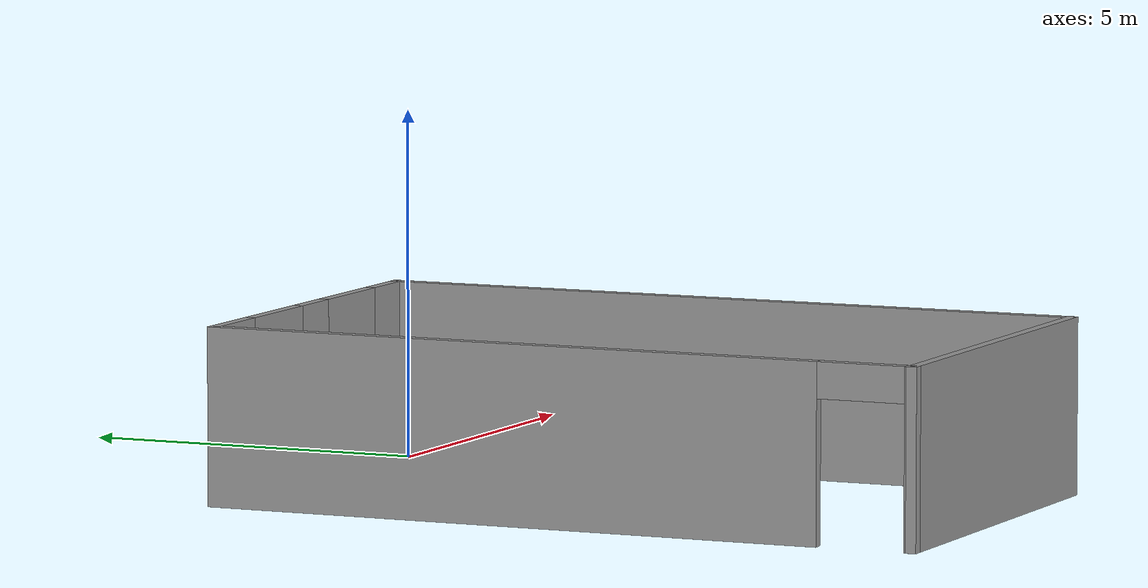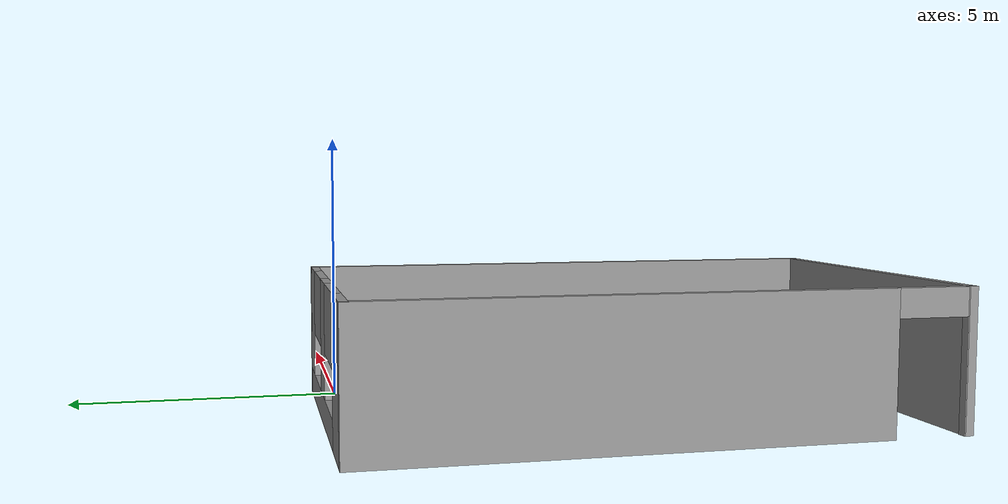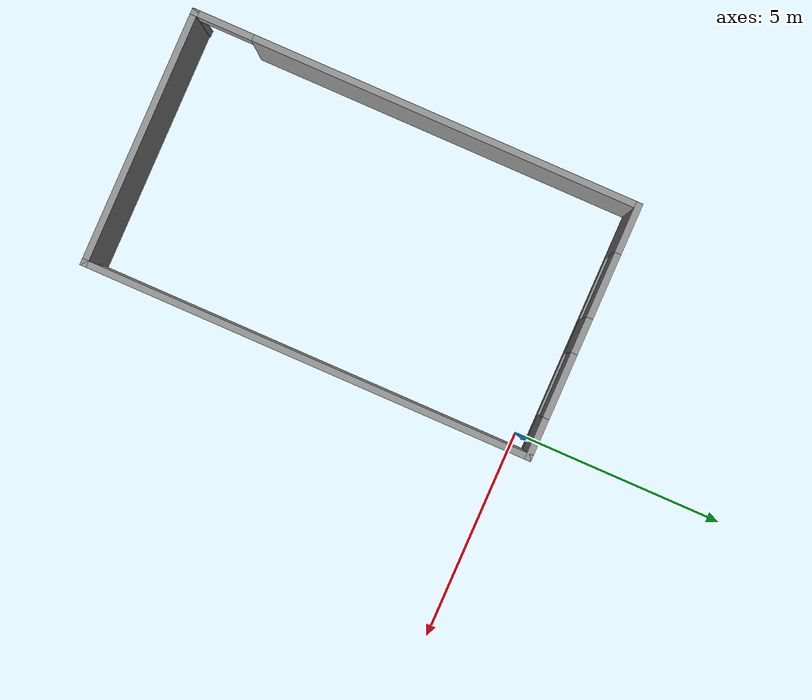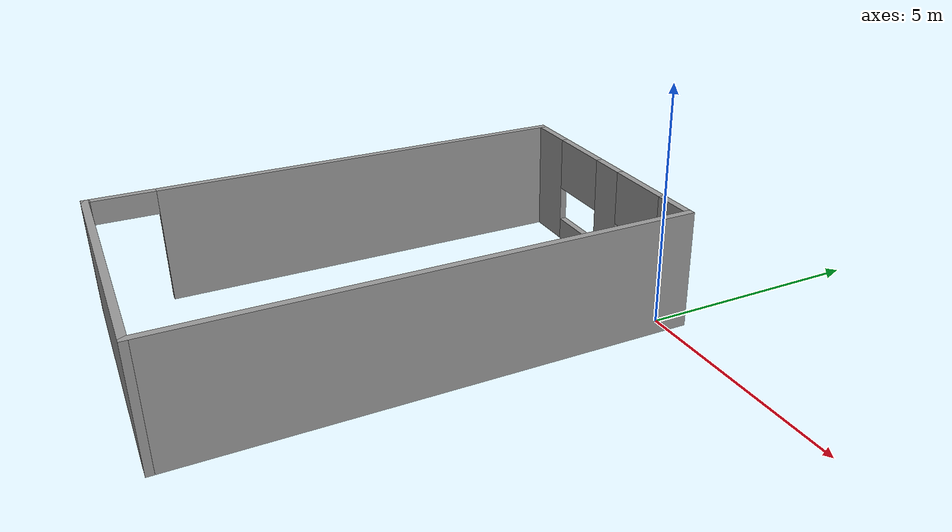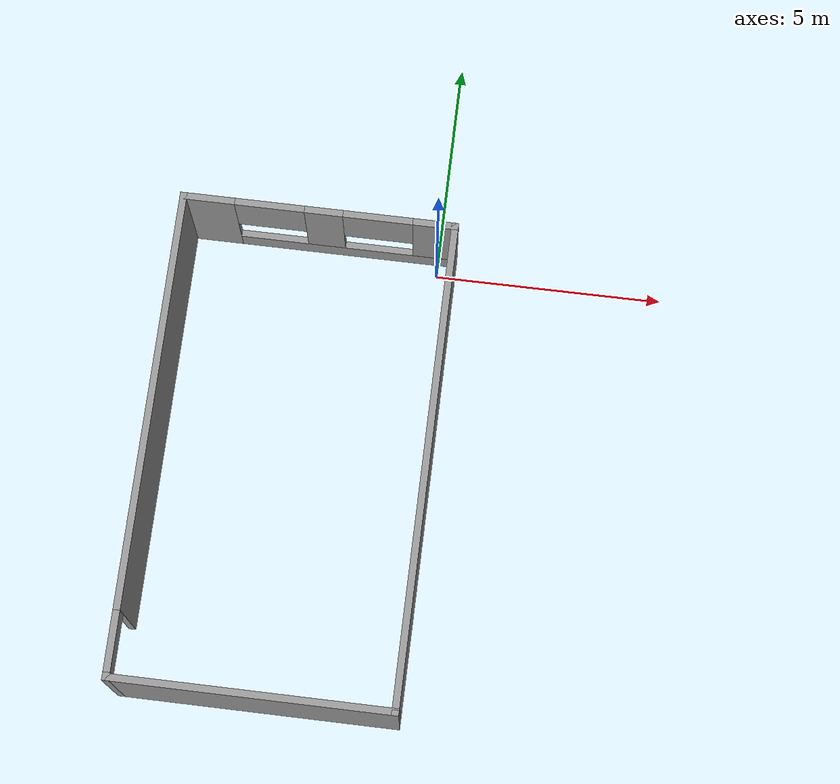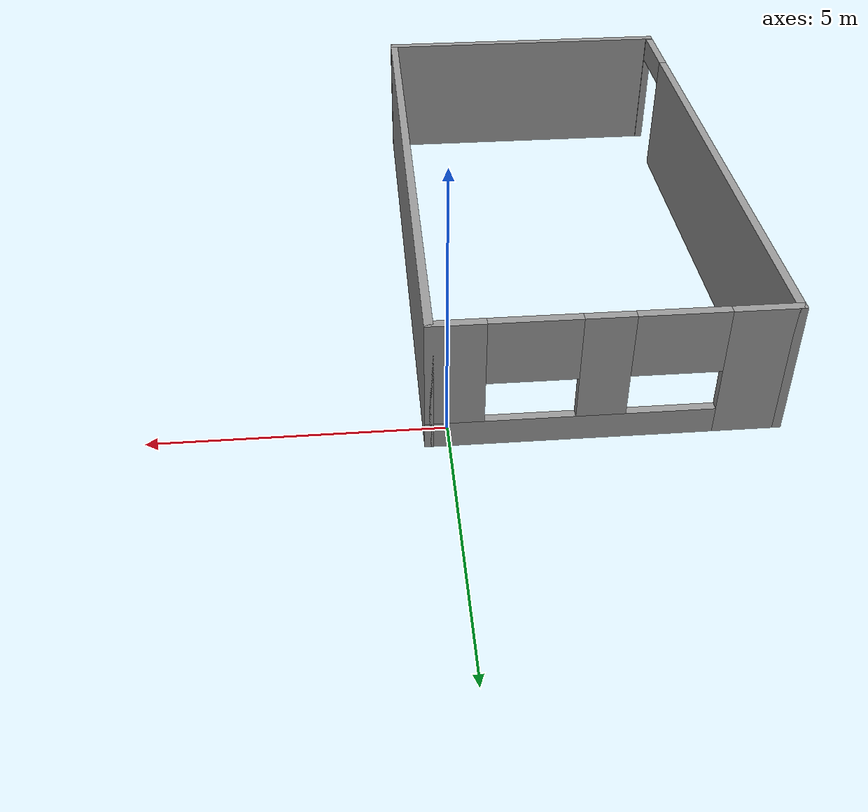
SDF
<?xml version='1.0'?>
<sdf version='1.7'>
  <model name='new_room'>
    <pose>-2.59495 -4.83209 0 0 -0 0</pose>
    <link name='Wall_5'>
      <pose>-2.925 0 0 0 -0 1.5708</pose>
      <visual name='Wall_5_Visual_0'>
        <pose>-5.16426 0 1.25 0 -0 0</pose>
        <geometry>
          <box>
            <size>0.171477 0.15 2.5</size>
          </box>
        </geometry>
        <material>
          <script>
            <uri>file://media/materials/scripts/gazebo.material</uri>
            <name>Gazebo/Grey</name>
          </script>
          <ambient>1 1 1 1</ambient>
        </material>
        <meta>
          <layer>0</layer>
        </meta>
      </visual>
      <collision name='Wall_5_Collision_0'>
        <geometry>
          <box>
            <size>0.171477 0.15 2.5</size>
          </box>
        </geometry>
        <pose>-5.16426 0 1.25 0 -0 0</pose>
      </collision>
      <visual name='Wall_5_Visual_1'>
        <pose>0.716761 0 1.25 0 -0 0</pose>
        <geometry>
          <box>
            <size>9.06648 0.15 2.5</size>
          </box>
        </geometry>
        <material>
          <script>
            <uri>file://media/materials/scripts/gazebo.material</uri>
            <name>Gazebo/Grey</name>
          </script>
          <ambient>1 1 1 1</ambient>
        </material>
        <meta>
          <layer>0</layer>
        </meta>
      </visual>
      <collision name='Wall_5_Collision_1'>
        <geometry>
          <box>
            <size>9.06648 0.15 2.5</size>
          </box>
        </geometry>
        <pose>0.716761 0 1.25 0 -0 0</pose>
      </collision>
      <visual name='Wall_5_Visual_2'>
        <pose>-4.4475 0 2.25 0 -0 0</pose>
        <geometry>
          <box>
            <size>1.26204 0.15 0.5</size>
          </box>
        </geometry>
        <material>
          <script>
            <uri>file://media/materials/scripts/gazebo.material</uri>
            <name>Gazebo/Grey</name>
          </script>
          <ambient>1 1 1 1</ambient>
        </material>
        <meta>
          <layer>0</layer>
        </meta>
      </visual>
      <collision name='Wall_5_Collision_2'>
        <geometry>
          <box>
            <size>1.26204 0.15 0.5</size>
          </box>
        </geometry>
        <pose>-4.4475 0 2.25 0 -0 0</pose>
      </collision>
    </link>
    <link name='Wall_6'>
      <pose>-0 5.175 0 0 -0 0</pose>
      <visual name='Wall_6_Visual_0'>
        <pose>-2.40831 0 1.25 0 -0 0</pose>
        <geometry>
          <box>
            <size>1.18338 0.15 2.5</size>
          </box>
        </geometry>
        <material>
          <script>
            <uri>file://media/materials/scripts/gazebo.material</uri>
            <name>Gazebo/Grey</name>
          </script>
          <ambient>1 1 1 1</ambient>
        </material>
        <meta>
          <layer>0</layer>
        </meta>
      </visual>
      <collision name='Wall_6_Collision_0'>
        <geometry>
          <box>
            <size>1.18338 0.15 2.5</size>
          </box>
        </geometry>
        <pose>-2.40831 0 1.25 0 -0 0</pose>
      </collision>
      <visual name='Wall_6_Visual_1'>
        <pose>0.591691 0 0.25 0 -0 0</pose>
        <geometry>
          <box>
            <size>4.81662 0.15 0.5</size>
          </box>
        </geometry>
        <material>
          <script>
            <uri>file://media/materials/scripts/gazebo.material</uri>
            <name>Gazebo/Grey</name>
          </script>
          <ambient>1 1 1 1</ambient>
        </material>
        <meta>
          <layer>0</layer>
        </meta>
      </visual>
      <collision name='Wall_6_Collision_1'>
        <geometry>
          <box>
            <size>4.81662 0.15 0.5</size>
          </box>
        </geometry>
        <pose>0.591691 0 0.25 0 -0 0</pose>
      </collision>
      <visual name='Wall_6_Visual_2'>
        <pose>0.101957 0 1.5 0 -0 0</pose>
        <geometry>
          <box>
            <size>0.829199 0.15 2</size>
          </box>
        </geometry>
        <material>
          <script>
            <uri>file://media/materials/scripts/gazebo.material</uri>
            <name>Gazebo/Grey</name>
          </script>
          <ambient>1 1 1 1</ambient>
        </material>
        <meta>
          <layer>0</layer>
        </meta>
      </visual>
      <collision name='Wall_6_Collision_2'>
        <geometry>
          <box>
            <size>0.829199 0.15 2</size>
          </box>
        </geometry>
        <pose>0.101957 0 1.5 0 -0 0</pose>
      </collision>
      <visual name='Wall_6_Visual_3'>
        <pose>2.51027 0 1.5 0 -0 0</pose>
        <geometry>
          <box>
            <size>0.979468 0.15 2</size>
          </box>
        </geometry>
        <material>
          <script>
            <uri>file://media/materials/scripts/gazebo.material</uri>
            <name>Gazebo/Grey</name>
          </script>
          <ambient>1 1 1 1</ambient>
        </material>
        <meta>
          <layer>0</layer>
        </meta>
      </visual>
      <collision name='Wall_6_Collision_3'>
        <geometry>
          <box>
            <size>0.979468 0.15 2</size>
          </box>
        </geometry>
        <pose>2.51027 0 1.5 0 -0 0</pose>
      </collision>
      <visual name='Wall_6_Visual_4'>
        <pose>-1.06463 0 1.9 0 -0 0</pose>
        <geometry>
          <box>
            <size>1.50398 0.15 1.2</size>
          </box>
        </geometry>
        <material>
          <script>
            <uri>file://media/materials/scripts/gazebo.material</uri>
            <name>Gazebo/Grey</name>
          </script>
          <ambient>1 1 1 1</ambient>
        </material>
        <meta>
          <layer>0</layer>
        </meta>
      </visual>
      <collision name='Wall_6_Collision_4'>
        <geometry>
          <box>
            <size>1.50398 0.15 1.2</size>
          </box>
        </geometry>
        <pose>-1.06463 0 1.9 0 -0 0</pose>
      </collision>
      <visual name='Wall_6_Visual_5'>
        <pose>1.26854 0 1.9 0 -0 0</pose>
        <geometry>
          <box>
            <size>1.50398 0.15 1.2</size>
          </box>
        </geometry>
        <material>
          <script>
            <uri>file://media/materials/scripts/gazebo.material</uri>
            <name>Gazebo/Grey</name>
          </script>
          <ambient>1 1 1 1</ambient>
        </material>
        <meta>
          <layer>0</layer>
        </meta>
      </visual>
      <collision name='Wall_6_Collision_5'>
        <geometry>
          <box>
            <size>1.50398 0.15 1.2</size>
          </box>
        </geometry>
        <pose>1.26854 0 1.9 0 -0 0</pose>
      </collision>
    </link>
    <link name='Wall_7'>
      <collision name='Wall_7_Collision'>
        <geometry>
          <box>
            <size>10.5 0.15 2.5</size>
          </box>
        </geometry>
        <pose>0 0 1.25 0 -0 0</pose>
      </collision>
      <visual name='Wall_7_Visual'>
        <pose>0 0 1.25 0 -0 0</pose>
        <geometry>
          <box>
            <size>10.5 0.15 2.5</size>
          </box>
        </geometry>
        <material>
          <script>
            <uri>file://media/materials/scripts/gazebo.material</uri>
            <name>Gazebo/Grey</name>
          </script>
          <ambient>1 1 1 1</ambient>
        </material>
        <meta>
          <layer>0</layer>
        </meta>
      </visual>
      <pose>2.925 0 0 0 -0 -1.5708</pose>
    </link>
    <link name='Wall_8'>
      <collision name='Wall_8_Collision'>
        <geometry>
          <box>
            <size>6 0.15 2.5</size>
          </box>
        </geometry>
        <pose>0 0 1.25 0 -0 0</pose>
      </collision>
      <visual name='Wall_8_Visual'>
        <pose>0 0 1.25 0 -0 0</pose>
        <geometry>
          <box>
            <size>6 0.15 2.5</size>
          </box>
        </geometry>
        <material>
          <script>
            <uri>file://media/materials/scripts/gazebo.material</uri>
            <name>Gazebo/Grey</name>
          </script>
          <ambient>1 1 1 1</ambient>
        </material>
        <meta>
          <layer>0</layer>
        </meta>
      </visual>
      <pose>-0 -5.175 0 0 -0 3.14159</pose>
    </link>
    <static>1</static>
  </model>
</sdf>
